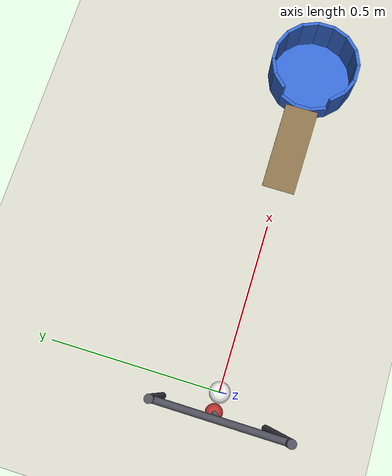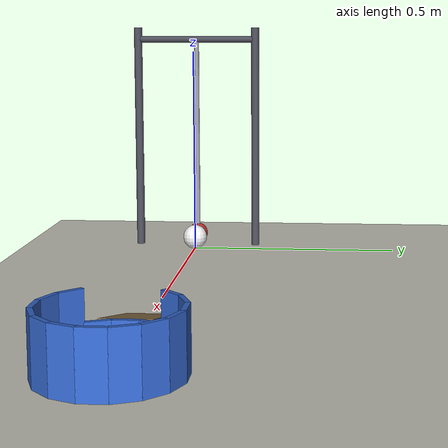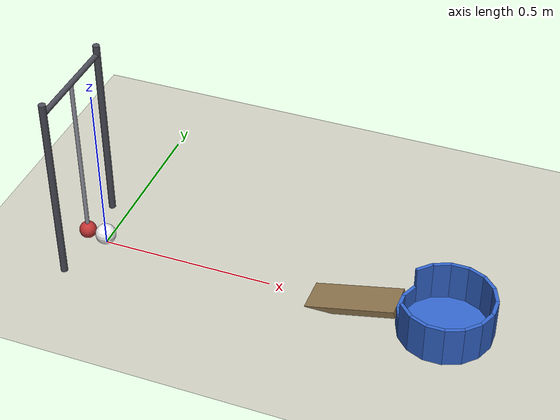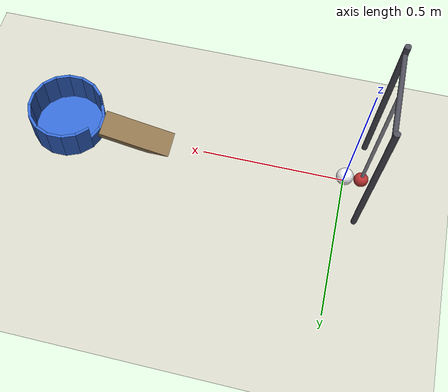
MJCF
<mujoco model="pendulum_ball_cup">
  <option timestep="0.002" gravity="0 0 -9.81"/>

  <visual>
    <global offwidth="1280" offheight="720"/>
  </visual>

  <worldbody>
    <light name="sun" pos="0.5 -1 3" dir="0 0.3 -1" directional="true"/>
    <geom name="floor" type="plane" size="3 3 0.1" rgba="0.8 0.8 0.75 1"/>

    <!-- visual-only support frame for the pendulum -->
    <geom name="frame_post_left" type="cylinder" fromto="-0.056 0.15 0 -0.056 0.15 0.56" size="0.01" contype="0" conaffinity="0" rgba="0.3 0.3 0.35 1"/>
    <geom name="frame_post_right" type="cylinder" fromto="-0.056 -0.15 0 -0.056 -0.15 0.56" size="0.01" contype="0" conaffinity="0" rgba="0.3 0.3 0.35 1"/>
    <geom name="frame_axle" type="cylinder" fromto="-0.056 -0.15 0.53 -0.056 0.15 0.53" size="0.008" contype="0" conaffinity="0" rgba="0.3 0.3 0.35 1"/>

    <!-- pendulum: hinge at 0.53 m, bob centre 0.5 m below hinge (z = 0.03 at bottom, level with ball centre) -->
    <body name="pendulum" pos="-0.056 0 0.53">
      <joint name="pendulum_hinge" type="hinge" axis="0 1 0" pos="0 0 0"/>
      <geom name="pendulum_rod" type="capsule" fromto="0 0 0 0 0 -0.475" size="0.006" mass="0.05" rgba="0.6 0.6 0.65 1"/>
      <geom name="pendulum_bob" type="sphere" pos="0 0 -0.5" size="0.025" mass="1.0" rgba="0.75 0.2 0.2 1"/>
    </body>

    <!-- ball resting on the floor at x = 0 -->
    <body name="ball" pos="0 0 0.03">
      <freejoint name="ball_free"/>
      <geom name="ball" type="sphere" size="0.03" mass="0.1" rgba="0.95 0.95 0.95 1"/>
    </body>

    <!-- entry ramp: top surface rises from (0.62, 0) to (0.87, 0.06), meeting the cup's spout notch -->
    <geom name="ramp" type="box" pos="0.74733 0 0.02028" euler="0 -13.496 0" size="0.12855 0.05 0.01" rgba="0.55 0.45 0.3 1"/>

    <!-- cup centred 1 m from the ball's start: base disc plus 16 wall slats, inner radius 0.12, walls 0.12 high with a 0.06 high spout notch facing the ramp -->
    <body name="cup" pos="1 0 0">
      <geom name="cup_base" type="cylinder" pos="0 0 0.002" size="0.13 0.002" rgba="0.2 0.4 0.8 1"/>
      <geom name="cup_wall_00" type="box" pos="0.125 0 0.06" euler="0 0 0" size="0.005 0.026 0.06" rgba="0.2 0.4 0.8 1"/>
      <geom name="cup_wall_01" type="box" pos="0.11548 0.04784 0.06" euler="0 0 22.5" size="0.005 0.026 0.06" rgba="0.2 0.4 0.8 1"/>
      <geom name="cup_wall_02" type="box" pos="0.08839 0.08839 0.06" euler="0 0 45" size="0.005 0.026 0.06" rgba="0.2 0.4 0.8 1"/>
      <geom name="cup_wall_03" type="box" pos="0.04784 0.11548 0.06" euler="0 0 67.5" size="0.005 0.026 0.06" rgba="0.2 0.4 0.8 1"/>
      <geom name="cup_wall_04" type="box" pos="0 0.125 0.06" euler="0 0 90" size="0.005 0.026 0.06" rgba="0.2 0.4 0.8 1"/>
      <geom name="cup_wall_05" type="box" pos="-0.04784 0.11548 0.06" euler="0 0 112.5" size="0.005 0.026 0.06" rgba="0.2 0.4 0.8 1"/>
      <geom name="cup_wall_06" type="box" pos="-0.08839 0.08839 0.06" euler="0 0 135" size="0.005 0.026 0.06" rgba="0.2 0.4 0.8 1"/>
      <geom name="cup_wall_07" type="box" pos="-0.11548 0.04784 0.03" euler="0 0 157.5" size="0.005 0.026 0.03" rgba="0.2 0.4 0.8 1"/>
      <geom name="cup_wall_08" type="box" pos="-0.125 0 0.03" euler="0 0 180" size="0.005 0.026 0.03" rgba="0.2 0.4 0.8 1"/>
      <geom name="cup_wall_09" type="box" pos="-0.11548 -0.04784 0.03" euler="0 0 202.5" size="0.005 0.026 0.03" rgba="0.2 0.4 0.8 1"/>
      <geom name="cup_wall_10" type="box" pos="-0.08839 -0.08839 0.06" euler="0 0 225" size="0.005 0.026 0.06" rgba="0.2 0.4 0.8 1"/>
      <geom name="cup_wall_11" type="box" pos="-0.04784 -0.11548 0.06" euler="0 0 247.5" size="0.005 0.026 0.06" rgba="0.2 0.4 0.8 1"/>
      <geom name="cup_wall_12" type="box" pos="0 -0.125 0.06" euler="0 0 270" size="0.005 0.026 0.06" rgba="0.2 0.4 0.8 1"/>
      <geom name="cup_wall_13" type="box" pos="0.04784 -0.11548 0.06" euler="0 0 292.5" size="0.005 0.026 0.06" rgba="0.2 0.4 0.8 1"/>
      <geom name="cup_wall_14" type="box" pos="0.08839 -0.08839 0.06" euler="0 0 315" size="0.005 0.026 0.06" rgba="0.2 0.4 0.8 1"/>
      <geom name="cup_wall_15" type="box" pos="0.11548 -0.04784 0.06" euler="0 0 337.5" size="0.005 0.026 0.06" rgba="0.2 0.4 0.8 1"/>
    </body>
  </worldbody>

  <keyframe>
    <key name="start" qpos="1.10  0 0 0.03  1 0 0 0" qvel="0  0 0 0  0 0 0"/>
  </keyframe>
</mujoco>
